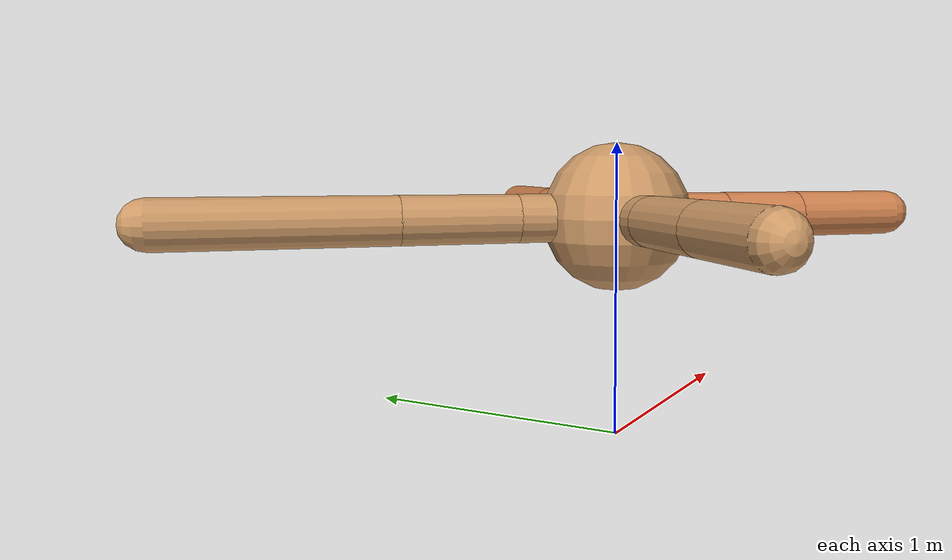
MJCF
<mujoco model="ant">
  <compiler angle="degree" coordinate="local" inertiafromgeom="true" />
  <option integrator="RK4" timestep="0.01" />
  <custom>
    <numeric data="0.0 0.0 0.55 1.0 0.0 0.0 0.0 0.0 1.0 0.0 -1.0 0.0 -1.0 0.0 1.0" name="init_qpos" />
  </custom>
  <default>
    <joint armature="1" damping="1" limited="true" />
    <geom conaffinity="0" condim="3" density="5.0" friction="1.5 0.1 0.1" margin="0.01" rgba="0.8 0.6 0.4 1" />
  </default>
  <worldbody>
    <body name="torso" pos="0 0 0.75">
      <geom name="torso_geom" pos="0 0 0" size="0.25" type="sphere" />

      <body name="front_left_leg" pos="0 0 0">
        <geom fromto="0.0 0.0 0.0 0.2719480517186637 0.2719480517186637 0.0" name="aux_1_geom" size="0.08" type="capsule" rgba=".8 .5 .3 1" />
        <body name="aux_1" pos="0.2719480517186637 0.2719480517186637 0.0">
          <joint axis="0 0 1" name="hip_1" pos="0.0 0.0 0.0" range="-40 40" type="hinge" />
          <geom fromto="0.0 0.0 0.0 0.267463916378146 0.267463916378146 0.0" name="left_leg_geom" size="0.08" type="capsule" rgba=".8 .5 .3 1" />
          <body pos="0.267463916378146 0.267463916378146 0.0" name="front_left_foot">
            <joint axis="-1 1 0" name="ankle_1" pos="0.0 0.0 0.0" range="30 100" type="hinge" />
            <geom fromto="0.0 0.0 0.0 0.3787740095570038 0.3787740095570038 0.0" name="left_ankle_geom" size="0.08" type="capsule" rgba=".8 .5 .3 1" />
          </body>
        </body>
      </body>
      <body name="front_right_leg" pos="0 0 0">
        <geom fromto="0.0 0.0 0.0 -0.24413541188844806 0.24413541188844806 0.0" name="aux_2_geom" size="0.08" type="capsule" />
        <body name="aux_2" pos="-0.24413541188844806 0.24413541188844806 0.0">
          <joint axis="0 0 1" name="hip_2" pos="0.0 0.0 0.0" range="-40 40" type="hinge" />
          <geom fromto="0.0 0.0 0.0 -0.2682458984793385 0.2682458984793385 0.0" name="right_leg_geom" size="0.08" type="capsule" />
          <body pos="-0.2682458984793385 0.2682458984793385 0.0" name="front_right_foot">
            <joint axis="1 1 0" name="ankle_2" pos="0.0 0.0 0.0" range="-100 -30" type="hinge" />
            <geom fromto="0.0 0.0 0.0 -0.5098247034579754 0.5098247034579754 0.0" name="right_ankle_geom" size="0.08" type="capsule" />
          </body>
        </body>
      </body>
      <body name="left_back_leg" pos="0 0 0">
        <geom fromto="0.0 0.0 0.0 -0.21235383592294835 -0.21235383592294835 0.0" name="aux_3_geom" size="0.08" type="capsule" />
        <body name="aux_3" pos="-0.21235383592294835 -0.21235383592294835 0.0">
          <joint axis="0 0 1" name="hip_3" pos="0.0 0.0 0.0" range="-40 40" type="hinge" />
          <geom fromto="0.0 0.0 0.0 -0.24401661363348418 -0.24401661363348418 0.0" name="back_leg_geom" size="0.08" type="capsule" />
          <body pos="-0.24401661363348418 -0.24401661363348418 0.0" name="left_back_foot">
            <joint axis="-1 1 0" name="ankle_3" pos="0.0 0.0 0.0" range="-100 -30" type="hinge" />
            <geom fromto="0.0 0.0 0.0 -0.2647539668632963 -0.2647539668632963 0.0" name="third_ankle_geom" size="0.08" type="capsule" />
          </body>
        </body>
      </body>
      <body name="right_back_leg" pos="0 0 0">
        <geom fromto="0.0 0.0 0.0 0.2809271152663316 -0.2809271152663316 0.0" name="aux_4_geom" size="0.08" type="capsule" rgba=".8 .5 .3 1" />
        <body name="aux_4" pos="0.2809271152663316 -0.2809271152663316 0.0">
          <joint axis="0 0 1" name="hip_4" pos="0.0 0.0 0.0" range="-40 40" type="hinge" />
          <geom fromto="0.0 0.0 0.0 0.20264857523036808 -0.20264857523036808 0.0" name="rightback_leg_geom" size="0.08" type="capsule" rgba=".8 .5 .3 1" />
          <body pos="0.20264857523036808 -0.20264857523036808 0.0" name="right_back_foot">
            <joint axis="1 1 0" name="ankle_4" pos="0.0 0.0 0.0" range="30 100" type="hinge" />
            <geom fromto="0.0 0.0 0.0 0.2720353870849811 -0.2720353870849811 0.0" name="fourth_ankle_geom" size="0.08" type="capsule" rgba=".8 .5 .3 1" />
          </body>
        </body>
      </body>
    </body>
  </worldbody>
  <actuator>
    <motor ctrllimited="true" ctrlrange="-1.0 1.0" joint="hip_4" gear="150" />
    <motor ctrllimited="true" ctrlrange="-1.0 1.0" joint="ankle_4" gear="150" />
    <motor ctrllimited="true" ctrlrange="-1.0 1.0" joint="hip_1" gear="150" />
    <motor ctrllimited="true" ctrlrange="-1.0 1.0" joint="ankle_1" gear="150" />
    <motor ctrllimited="true" ctrlrange="-1.0 1.0" joint="hip_2" gear="150" />
    <motor ctrllimited="true" ctrlrange="-1.0 1.0" joint="ankle_2" gear="150" />
    <motor ctrllimited="true" ctrlrange="-1.0 1.0" joint="hip_3" gear="150" />
    <motor ctrllimited="true" ctrlrange="-1.0 1.0" joint="ankle_3" gear="150" />
  </actuator>
</mujoco>
